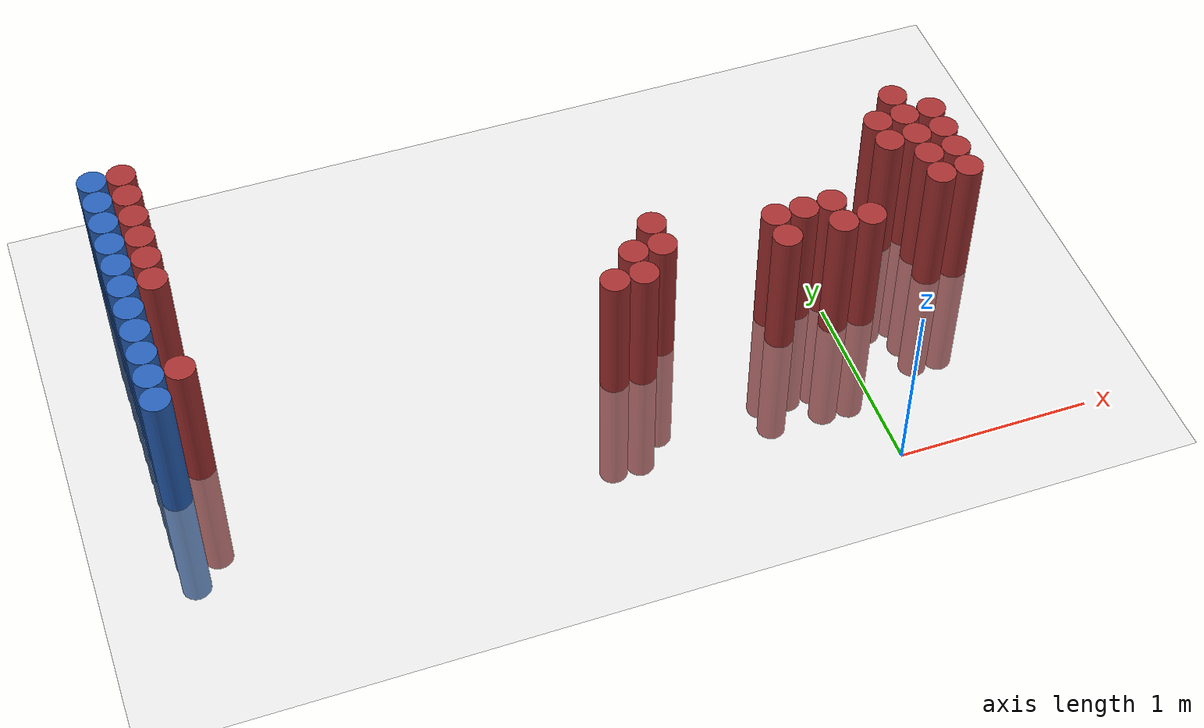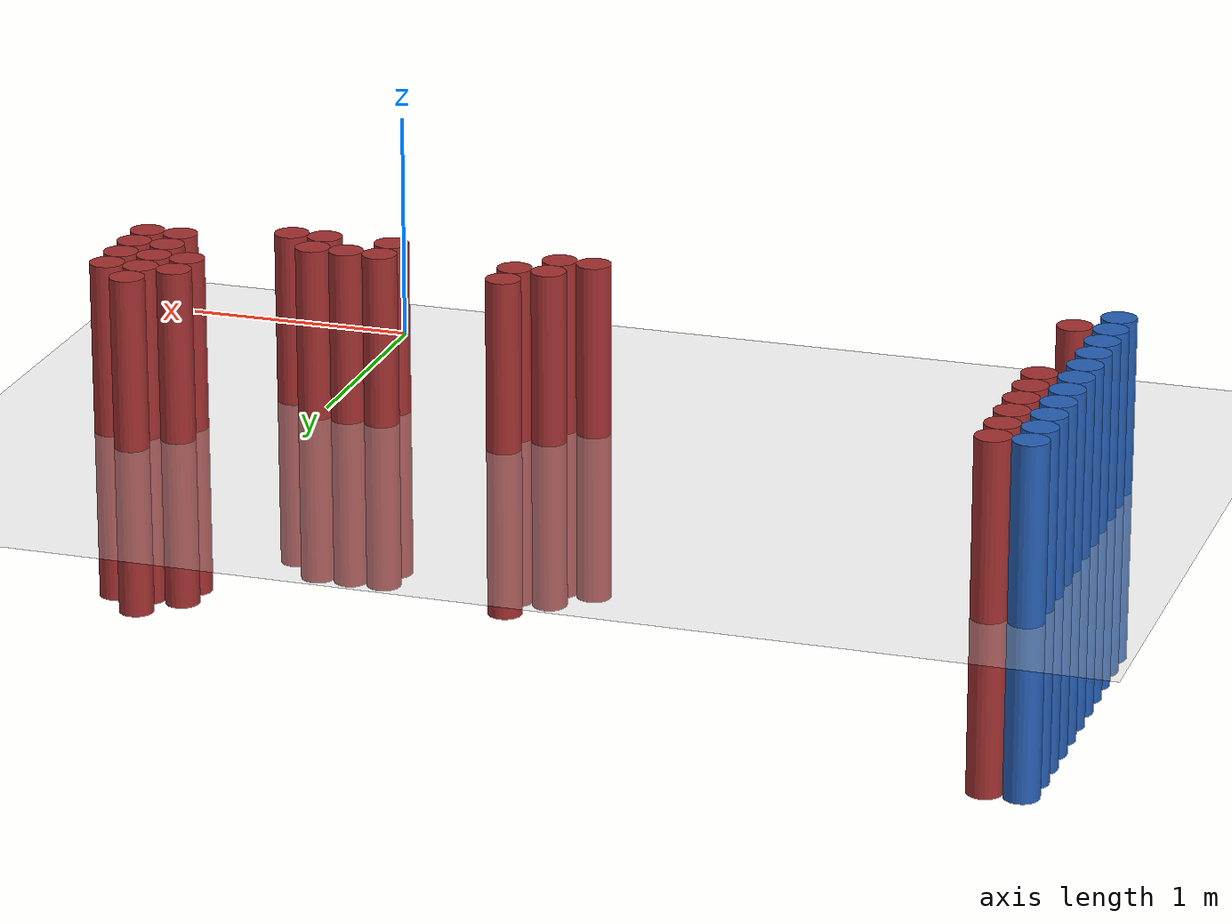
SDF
<sdf version="1.6">
 <world name="default">
  <model name="ground_plane">
   <static>1</static>
   <link name="link">
    <collision name="collision">
     <geometry><plane><normal>0 0 1</normal><size>100 100</size></plane></geometry>
     <surface><friction><ode><mu>100</mu><mu2>50</mu2></ode></friction></surface>
    </collision>
    <visual name="visual">
     <cast_shadows>0</cast_shadows>
     <geometry><plane><normal>0 0 1</normal><size>100 100</size></plane></geometry>
     <material>
      <script><uri>file://media/materials/scripts/gazebo.material</uri><name>Gazebo/Grey</name></script>
     </material>
    </visual>
   </link>
  </model>
  <model name="unit_cylinder_127">
   <static>1</static>
   <pose>-3.425000 0.925000 0.000000 0.000000 0.000000 0.000000</pose>
   <link name="link">
    <inertial>
     <mass>1</mass>
     <inertia><ixx>0.145833</ixx><ixy>0</ixy><ixz>0</ixz><iyy>0.145833</iyy><iyz>0</iyz><izz>0.125</izz></inertia>
    </inertial>
    <collision name="collision">
     <geometry><cylinder><radius>0.075000</radius><length>1.5</length></cylinder></geometry>
    </collision>
    <visual name="visual">
     <geometry><cylinder><radius>0.075000</radius><length>1.5</length></cylinder></geometry>
     <material>
      <ambient>0.152000 0.379000 0.720000 1</ambient>
      <diffuse>0.152000 0.379000 0.720000 1</diffuse>
     </material>
     <material>
      <script><name>Gazebo/Grey</name><uri>file://media/materials/scripts/gazebo.material</uri></script>
     </material>
    </visual>
   </link>
  </model>
  <model name="unit_cylinder_129">
   <static>1</static>
   <pose>-3.425000 1.075000 0.000000 0.000000 0.000000 0.000000</pose>
   <link name="link">
    <inertial>
     <mass>1</mass>
     <inertia><ixx>0.145833</ixx><ixy>0</ixy><ixz>0</ixz><iyy>0.145833</iyy><iyz>0</iyz><izz>0.125</izz></inertia>
    </inertial>
    <collision name="collision">
     <geometry><cylinder><radius>0.075000</radius><length>1.5</length></cylinder></geometry>
    </collision>
    <visual name="visual">
     <geometry><cylinder><radius>0.075000</radius><length>1.5</length></cylinder></geometry>
     <material>
      <ambient>0.152000 0.379000 0.720000 1</ambient>
      <diffuse>0.152000 0.379000 0.720000 1</diffuse>
     </material>
     <material>
      <script><name>Gazebo/Grey</name><uri>file://media/materials/scripts/gazebo.material</uri></script>
     </material>
    </visual>
   </link>
  </model>
  <model name="unit_cylinder_131">
   <static>1</static>
   <pose>-3.425000 1.225000 0.000000 0.000000 0.000000 0.000000</pose>
   <link name="link">
    <inertial>
     <mass>1</mass>
     <inertia><ixx>0.145833</ixx><ixy>0</ixy><ixz>0</ixz><iyy>0.145833</iyy><iyz>0</iyz><izz>0.125</izz></inertia>
    </inertial>
    <collision name="collision">
     <geometry><cylinder><radius>0.075000</radius><length>1.5</length></cylinder></geometry>
    </collision>
    <visual name="visual">
     <geometry><cylinder><radius>0.075000</radius><length>1.5</length></cylinder></geometry>
     <material>
      <ambient>0.152000 0.379000 0.720000 1</ambient>
      <diffuse>0.152000 0.379000 0.720000 1</diffuse>
     </material>
     <material>
      <script><name>Gazebo/Grey</name><uri>file://media/materials/scripts/gazebo.material</uri></script>
     </material>
    </visual>
   </link>
  </model>
  <model name="unit_cylinder_133">
   <static>1</static>
   <pose>-3.425000 1.375000 0.000000 0.000000 0.000000 0.000000</pose>
   <link name="link">
    <inertial>
     <mass>1</mass>
     <inertia><ixx>0.145833</ixx><ixy>0</ixy><ixz>0</ixz><iyy>0.145833</iyy><iyz>0</iyz><izz>0.125</izz></inertia>
    </inertial>
    <collision name="collision">
     <geometry><cylinder><radius>0.075000</radius><length>1.5</length></cylinder></geometry>
    </collision>
    <visual name="visual">
     <geometry><cylinder><radius>0.075000</radius><length>1.5</length></cylinder></geometry>
     <material>
      <ambient>0.152000 0.379000 0.720000 1</ambient>
      <diffuse>0.152000 0.379000 0.720000 1</diffuse>
     </material>
     <material>
      <script><name>Gazebo/Grey</name><uri>file://media/materials/scripts/gazebo.material</uri></script>
     </material>
    </visual>
   </link>
  </model>
  <model name="unit_cylinder_135">
   <static>1</static>
   <pose>-3.425000 1.525000 0.000000 0.000000 0.000000 0.000000</pose>
   <link name="link">
    <inertial>
     <mass>1</mass>
     <inertia><ixx>0.145833</ixx><ixy>0</ixy><ixz>0</ixz><iyy>0.145833</iyy><iyz>0</iyz><izz>0.125</izz></inertia>
    </inertial>
    <collision name="collision">
     <geometry><cylinder><radius>0.075000</radius><length>1.5</length></cylinder></geometry>
    </collision>
    <visual name="visual">
     <geometry><cylinder><radius>0.075000</radius><length>1.5</length></cylinder></geometry>
     <material>
      <ambient>0.152000 0.379000 0.720000 1</ambient>
      <diffuse>0.152000 0.379000 0.720000 1</diffuse>
     </material>
     <material>
      <script><name>Gazebo/Grey</name><uri>file://media/materials/scripts/gazebo.material</uri></script>
     </material>
    </visual>
   </link>
  </model>
  <model name="unit_cylinder_137">
   <static>1</static>
   <pose>-3.425000 1.675000 0.000000 0.000000 0.000000 0.000000</pose>
   <link name="link">
    <inertial>
     <mass>1</mass>
     <inertia><ixx>0.145833</ixx><ixy>0</ixy><ixz>0</ixz><iyy>0.145833</iyy><iyz>0</iyz><izz>0.125</izz></inertia>
    </inertial>
    <collision name="collision">
     <geometry><cylinder><radius>0.075000</radius><length>1.5</length></cylinder></geometry>
    </collision>
    <visual name="visual">
     <geometry><cylinder><radius>0.075000</radius><length>1.5</length></cylinder></geometry>
     <material>
      <ambient>0.152000 0.379000 0.720000 1</ambient>
      <diffuse>0.152000 0.379000 0.720000 1</diffuse>
     </material>
     <material>
      <script><name>Gazebo/Grey</name><uri>file://media/materials/scripts/gazebo.material</uri></script>
     </material>
    </visual>
   </link>
  </model>
  <model name="unit_cylinder_139">
   <static>1</static>
   <pose>-3.425000 1.825000 0.000000 0.000000 0.000000 0.000000</pose>
   <link name="link">
    <inertial>
     <mass>1</mass>
     <inertia><ixx>0.145833</ixx><ixy>0</ixy><ixz>0</ixz><iyy>0.145833</iyy><iyz>0</iyz><izz>0.125</izz></inertia>
    </inertial>
    <collision name="collision">
     <geometry><cylinder><radius>0.075000</radius><length>1.5</length></cylinder></geometry>
    </collision>
    <visual name="visual">
     <geometry><cylinder><radius>0.075000</radius><length>1.5</length></cylinder></geometry>
     <material>
      <ambient>0.152000 0.379000 0.720000 1</ambient>
      <diffuse>0.152000 0.379000 0.720000 1</diffuse>
     </material>
     <material>
      <script><name>Gazebo/Grey</name><uri>file://media/materials/scripts/gazebo.material</uri></script>
     </material>
    </visual>
   </link>
  </model>
  <model name="unit_cylinder_141">
   <static>1</static>
   <pose>-3.425000 1.975000 0.000000 0.000000 0.000000 0.000000</pose>
   <link name="link">
    <inertial>
     <mass>1</mass>
     <inertia><ixx>0.145833</ixx><ixy>0</ixy><ixz>0</ixz><iyy>0.145833</iyy><iyz>0</iyz><izz>0.125</izz></inertia>
    </inertial>
    <collision name="collision">
     <geometry><cylinder><radius>0.075000</radius><length>1.5</length></cylinder></geometry>
    </collision>
    <visual name="visual">
     <geometry><cylinder><radius>0.075000</radius><length>1.5</length></cylinder></geometry>
     <material>
      <ambient>0.152000 0.379000 0.720000 1</ambient>
      <diffuse>0.152000 0.379000 0.720000 1</diffuse>
     </material>
     <material>
      <script><name>Gazebo/Grey</name><uri>file://media/materials/scripts/gazebo.material</uri></script>
     </material>
    </visual>
   </link>
  </model>
  <model name="unit_cylinder_143">
   <static>1</static>
   <pose>-3.425000 2.125000 0.000000 0.000000 0.000000 0.000000</pose>
   <link name="link">
    <inertial>
     <mass>1</mass>
     <inertia><ixx>0.145833</ixx><ixy>0</ixy><ixz>0</ixz><iyy>0.145833</iyy><iyz>0</iyz><izz>0.125</izz></inertia>
    </inertial>
    <collision name="collision">
     <geometry><cylinder><radius>0.075000</radius><length>1.5</length></cylinder></geometry>
    </collision>
    <visual name="visual">
     <geometry><cylinder><radius>0.075000</radius><length>1.5</length></cylinder></geometry>
     <material>
      <ambient>0.152000 0.379000 0.720000 1</ambient>
      <diffuse>0.152000 0.379000 0.720000 1</diffuse>
     </material>
     <material>
      <script><name>Gazebo/Grey</name><uri>file://media/materials/scripts/gazebo.material</uri></script>
     </material>
    </visual>
   </link>
  </model>
  <model name="unit_cylinder_145">
   <static>1</static>
   <pose>-3.425000 2.275000 0.000000 0.000000 0.000000 0.000000</pose>
   <link name="link">
    <inertial>
     <mass>1</mass>
     <inertia><ixx>0.145833</ixx><ixy>0</ixy><ixz>0</ixz><iyy>0.145833</iyy><iyz>0</iyz><izz>0.125</izz></inertia>
    </inertial>
    <collision name="collision">
     <geometry><cylinder><radius>0.075000</radius><length>1.5</length></cylinder></geometry>
    </collision>
    <visual name="visual">
     <geometry><cylinder><radius>0.075000</radius><length>1.5</length></cylinder></geometry>
     <material>
      <ambient>0.152000 0.379000 0.720000 1</ambient>
      <diffuse>0.152000 0.379000 0.720000 1</diffuse>
     </material>
     <material>
      <script><name>Gazebo/Grey</name><uri>file://media/materials/scripts/gazebo.material</uri></script>
     </material>
    </visual>
   </link>
  </model>
  <model name="unit_cylinder_147">
   <static>1</static>
   <pose>-3.425000 2.425000 0.000000 0.000000 0.000000 0.000000</pose>
   <link name="link">
    <inertial>
     <mass>1</mass>
     <inertia><ixx>0.145833</ixx><ixy>0</ixy><ixz>0</ixz><iyy>0.145833</iyy><iyz>0</iyz><izz>0.125</izz></inertia>
    </inertial>
    <collision name="collision">
     <geometry><cylinder><radius>0.075000</radius><length>1.5</length></cylinder></geometry>
    </collision>
    <visual name="visual">
     <geometry><cylinder><radius>0.075000</radius><length>1.5</length></cylinder></geometry>
     <material>
      <ambient>0.152000 0.379000 0.720000 1</ambient>
      <diffuse>0.152000 0.379000 0.720000 1</diffuse>
     </material>
     <material>
      <script><name>Gazebo/Grey</name><uri>file://media/materials/scripts/gazebo.material</uri></script>
     </material>
    </visual>
   </link>
  </model>
  <model name="unit_cylinder_227">
   <static>1</static>
   <pose>-3.425000 0.925000 0.000000 0.000000 0.000000 0.000000</pose>
   <link name="link">
    <inertial>
     <mass>1</mass>
     <inertia><ixx>0.145833</ixx><ixy>0</ixy><ixz>0</ixz><iyy>0.145833</iyy><iyz>0</iyz><izz>0.125</izz></inertia>
    </inertial>
    <collision name="collision">
     <geometry><cylinder><radius>0.075000</radius><length>1.5</length></cylinder></geometry>
    </collision>
    <visual name="visual">
     <geometry><cylinder><radius>0.075000</radius><length>1.5</length></cylinder></geometry>
     <material>
      <ambient>0.152000 0.379000 0.720000 1</ambient>
      <diffuse>0.152000 0.379000 0.720000 1</diffuse>
     </material>
     <material>
      <script><name>Gazebo/Grey</name><uri>file://media/materials/scripts/gazebo.material</uri></script>
     </material>
    </visual>
   </link>
  </model>
  <model name="unit_cylinder_228">
   <static>1</static>
   <pose>-3.425000 1.075000 0.000000 0.000000 0.000000 0.000000</pose>
   <link name="link">
    <inertial>
     <mass>1</mass>
     <inertia><ixx>0.145833</ixx><ixy>0</ixy><ixz>0</ixz><iyy>0.145833</iyy><iyz>0</iyz><izz>0.125</izz></inertia>
    </inertial>
    <collision name="collision">
     <geometry><cylinder><radius>0.075000</radius><length>1.5</length></cylinder></geometry>
    </collision>
    <visual name="visual">
     <geometry><cylinder><radius>0.075000</radius><length>1.5</length></cylinder></geometry>
     <material>
      <ambient>0.152000 0.379000 0.720000 1</ambient>
      <diffuse>0.152000 0.379000 0.720000 1</diffuse>
     </material>
     <material>
      <script><name>Gazebo/Grey</name><uri>file://media/materials/scripts/gazebo.material</uri></script>
     </material>
    </visual>
   </link>
  </model>
  <model name="unit_cylinder_229">
   <static>1</static>
   <pose>-3.425000 1.225000 0.000000 0.000000 0.000000 0.000000</pose>
   <link name="link">
    <inertial>
     <mass>1</mass>
     <inertia><ixx>0.145833</ixx><ixy>0</ixy><ixz>0</ixz><iyy>0.145833</iyy><iyz>0</iyz><izz>0.125</izz></inertia>
    </inertial>
    <collision name="collision">
     <geometry><cylinder><radius>0.075000</radius><length>1.5</length></cylinder></geometry>
    </collision>
    <visual name="visual">
     <geometry><cylinder><radius>0.075000</radius><length>1.5</length></cylinder></geometry>
     <material>
      <ambient>0.152000 0.379000 0.720000 1</ambient>
      <diffuse>0.152000 0.379000 0.720000 1</diffuse>
     </material>
     <material>
      <script><name>Gazebo/Grey</name><uri>file://media/materials/scripts/gazebo.material</uri></script>
     </material>
    </visual>
   </link>
  </model>
  <model name="unit_cylinder_230">
   <static>1</static>
   <pose>-3.425000 1.375000 0.000000 0.000000 0.000000 0.000000</pose>
   <link name="link">
    <inertial>
     <mass>1</mass>
     <inertia><ixx>0.145833</ixx><ixy>0</ixy><ixz>0</ixz><iyy>0.145833</iyy><iyz>0</iyz><izz>0.125</izz></inertia>
    </inertial>
    <collision name="collision">
     <geometry><cylinder><radius>0.075000</radius><length>1.5</length></cylinder></geometry>
    </collision>
    <visual name="visual">
     <geometry><cylinder><radius>0.075000</radius><length>1.5</length></cylinder></geometry>
     <material>
      <ambient>0.152000 0.379000 0.720000 1</ambient>
      <diffuse>0.152000 0.379000 0.720000 1</diffuse>
     </material>
     <material>
      <script><name>Gazebo/Grey</name><uri>file://media/materials/scripts/gazebo.material</uri></script>
     </material>
    </visual>
   </link>
  </model>
  <model name="unit_cylinder_231">
   <static>1</static>
   <pose>-3.425000 1.525000 0.000000 0.000000 0.000000 0.000000</pose>
   <link name="link">
    <inertial>
     <mass>1</mass>
     <inertia><ixx>0.145833</ixx><ixy>0</ixy><ixz>0</ixz><iyy>0.145833</iyy><iyz>0</iyz><izz>0.125</izz></inertia>
    </inertial>
    <collision name="collision">
     <geometry><cylinder><radius>0.075000</radius><length>1.5</length></cylinder></geometry>
    </collision>
    <visual name="visual">
     <geometry><cylinder><radius>0.075000</radius><length>1.5</length></cylinder></geometry>
     <material>
      <ambient>0.152000 0.379000 0.720000 1</ambient>
      <diffuse>0.152000 0.379000 0.720000 1</diffuse>
     </material>
     <material>
      <script><name>Gazebo/Grey</name><uri>file://media/materials/scripts/gazebo.material</uri></script>
     </material>
    </visual>
   </link>
  </model>
  <model name="unit_cylinder_232">
   <static>1</static>
   <pose>-3.425000 1.675000 0.000000 0.000000 0.000000 0.000000</pose>
   <link name="link">
    <inertial>
     <mass>1</mass>
     <inertia><ixx>0.145833</ixx><ixy>0</ixy><ixz>0</ixz><iyy>0.145833</iyy><iyz>0</iyz><izz>0.125</izz></inertia>
    </inertial>
    <collision name="collision">
     <geometry><cylinder><radius>0.075000</radius><length>1.5</length></cylinder></geometry>
    </collision>
    <visual name="visual">
     <geometry><cylinder><radius>0.075000</radius><length>1.5</length></cylinder></geometry>
     <material>
      <ambient>0.152000 0.379000 0.720000 1</ambient>
      <diffuse>0.152000 0.379000 0.720000 1</diffuse>
     </material>
     <material>
      <script><name>Gazebo/Grey</name><uri>file://media/materials/scripts/gazebo.material</uri></script>
     </material>
    </visual>
   </link>
  </model>
  <model name="unit_cylinder_233">
   <static>1</static>
   <pose>-3.425000 1.825000 0.000000 0.000000 0.000000 0.000000</pose>
   <link name="link">
    <inertial>
     <mass>1</mass>
     <inertia><ixx>0.145833</ixx><ixy>0</ixy><ixz>0</ixz><iyy>0.145833</iyy><iyz>0</iyz><izz>0.125</izz></inertia>
    </inertial>
    <collision name="collision">
     <geometry><cylinder><radius>0.075000</radius><length>1.5</length></cylinder></geometry>
    </collision>
    <visual name="visual">
     <geometry><cylinder><radius>0.075000</radius><length>1.5</length></cylinder></geometry>
     <material>
      <ambient>0.152000 0.379000 0.720000 1</ambient>
      <diffuse>0.152000 0.379000 0.720000 1</diffuse>
     </material>
     <material>
      <script><name>Gazebo/Grey</name><uri>file://media/materials/scripts/gazebo.material</uri></script>
     </material>
    </visual>
   </link>
  </model>
  <model name="unit_cylinder_234">
   <static>1</static>
   <pose>-3.425000 1.975000 0.000000 0.000000 0.000000 0.000000</pose>
   <link name="link">
    <inertial>
     <mass>1</mass>
     <inertia><ixx>0.145833</ixx><ixy>0</ixy><ixz>0</ixz><iyy>0.145833</iyy><iyz>0</iyz><izz>0.125</izz></inertia>
    </inertial>
    <collision name="collision">
     <geometry><cylinder><radius>0.075000</radius><length>1.5</length></cylinder></geometry>
    </collision>
    <visual name="visual">
     <geometry><cylinder><radius>0.075000</radius><length>1.5</length></cylinder></geometry>
     <material>
      <ambient>0.152000 0.379000 0.720000 1</ambient>
      <diffuse>0.152000 0.379000 0.720000 1</diffuse>
     </material>
     <material>
      <script><name>Gazebo/Grey</name><uri>file://media/materials/scripts/gazebo.material</uri></script>
     </material>
    </visual>
   </link>
  </model>
  <model name="unit_cylinder_235">
   <static>1</static>
   <pose>-3.425000 2.125000 0.000000 0.000000 0.000000 0.000000</pose>
   <link name="link">
    <inertial>
     <mass>1</mass>
     <inertia><ixx>0.145833</ixx><ixy>0</ixy><ixz>0</ixz><iyy>0.145833</iyy><iyz>0</iyz><izz>0.125</izz></inertia>
    </inertial>
    <collision name="collision">
     <geometry><cylinder><radius>0.075000</radius><length>1.5</length></cylinder></geometry>
    </collision>
    <visual name="visual">
     <geometry><cylinder><radius>0.075000</radius><length>1.5</length></cylinder></geometry>
     <material>
      <ambient>0.152000 0.379000 0.720000 1</ambient>
      <diffuse>0.152000 0.379000 0.720000 1</diffuse>
     </material>
     <material>
      <script><name>Gazebo/Grey</name><uri>file://media/materials/scripts/gazebo.material</uri></script>
     </material>
    </visual>
   </link>
  </model>
  <model name="unit_cylinder_236">
   <static>1</static>
   <pose>-3.425000 2.275000 0.000000 0.000000 0.000000 0.000000</pose>
   <link name="link">
    <inertial>
     <mass>1</mass>
     <inertia><ixx>0.145833</ixx><ixy>0</ixy><ixz>0</ixz><iyy>0.145833</iyy><iyz>0</iyz><izz>0.125</izz></inertia>
    </inertial>
    <collision name="collision">
     <geometry><cylinder><radius>0.075000</radius><length>1.5</length></cylinder></geometry>
    </collision>
    <visual name="visual">
     <geometry><cylinder><radius>0.075000</radius><length>1.5</length></cylinder></geometry>
     <material>
      <ambient>0.152000 0.379000 0.720000 1</ambient>
      <diffuse>0.152000 0.379000 0.720000 1</diffuse>
     </material>
     <material>
      <script><name>Gazebo/Grey</name><uri>file://media/materials/scripts/gazebo.material</uri></script>
     </material>
    </visual>
   </link>
  </model>
  <model name="unit_cylinder_237">
   <static>1</static>
   <pose>-3.425000 2.425000 0.000000 0.000000 0.000000 0.000000</pose>
   <link name="link">
    <inertial>
     <mass>1</mass>
     <inertia><ixx>0.145833</ixx><ixy>0</ixy><ixz>0</ixz><iyy>0.145833</iyy><iyz>0</iyz><izz>0.125</izz></inertia>
    </inertial>
    <collision name="collision">
     <geometry><cylinder><radius>0.075000</radius><length>1.5</length></cylinder></geometry>
    </collision>
    <visual name="visual">
     <geometry><cylinder><radius>0.075000</radius><length>1.5</length></cylinder></geometry>
     <material>
      <ambient>0.152000 0.379000 0.720000 1</ambient>
      <diffuse>0.152000 0.379000 0.720000 1</diffuse>
     </material>
     <material>
      <script><name>Gazebo/Grey</name><uri>file://media/materials/scripts/gazebo.material</uri></script>
     </material>
    </visual>
   </link>
  </model>
  <model name="unit_cylinder_264">
   <static>1</static>
   <pose>-3.275000 1.075000 0.000000 0.000000 0.000000 0.000000</pose>
   <link name="link">
    <inertial>
     <mass>1</mass>
     <inertia><ixx>0.145833</ixx><ixy>0</ixy><ixz>0</ixz><iyy>0.145833</iyy><iyz>0</iyz><izz>0.125</izz></inertia>
    </inertial>
    <collision name="collision">
     <geometry><cylinder><radius>0.075000</radius><length>1.5</length></cylinder></geometry>
    </collision>
    <visual name="visual">
     <geometry><cylinder><radius>0.075000</radius><length>1.5</length></cylinder></geometry>
     <material>
      <ambient>0.648000 0.192000 0.192000 1</ambient>
      <diffuse>0.648000 0.192000 0.192000 1</diffuse>
     </material>
     <material>
      <script><name>Gazebo/Grey</name><uri>file://media/materials/scripts/gazebo.material</uri></script>
     </material>
    </visual>
   </link>
  </model>
  <model name="unit_cylinder_265">
   <static>1</static>
   <pose>-3.275000 1.675000 0.000000 0.000000 0.000000 0.000000</pose>
   <link name="link">
    <inertial>
     <mass>1</mass>
     <inertia><ixx>0.145833</ixx><ixy>0</ixy><ixz>0</ixz><iyy>0.145833</iyy><iyz>0</iyz><izz>0.125</izz></inertia>
    </inertial>
    <collision name="collision">
     <geometry><cylinder><radius>0.075000</radius><length>1.5</length></cylinder></geometry>
    </collision>
    <visual name="visual">
     <geometry><cylinder><radius>0.075000</radius><length>1.5</length></cylinder></geometry>
     <material>
      <ambient>0.648000 0.192000 0.192000 1</ambient>
      <diffuse>0.648000 0.192000 0.192000 1</diffuse>
     </material>
     <material>
      <script><name>Gazebo/Grey</name><uri>file://media/materials/scripts/gazebo.material</uri></script>
     </material>
    </visual>
   </link>
  </model>
  <model name="unit_cylinder_266">
   <static>1</static>
   <pose>-3.275000 1.825000 0.000000 0.000000 0.000000 0.000000</pose>
   <link name="link">
    <inertial>
     <mass>1</mass>
     <inertia><ixx>0.145833</ixx><ixy>0</ixy><ixz>0</ixz><iyy>0.145833</iyy><iyz>0</iyz><izz>0.125</izz></inertia>
    </inertial>
    <collision name="collision">
     <geometry><cylinder><radius>0.075000</radius><length>1.5</length></cylinder></geometry>
    </collision>
    <visual name="visual">
     <geometry><cylinder><radius>0.075000</radius><length>1.5</length></cylinder></geometry>
     <material>
      <ambient>0.648000 0.192000 0.192000 1</ambient>
      <diffuse>0.648000 0.192000 0.192000 1</diffuse>
     </material>
     <material>
      <script><name>Gazebo/Grey</name><uri>file://media/materials/scripts/gazebo.material</uri></script>
     </material>
    </visual>
   </link>
  </model>
  <model name="unit_cylinder_267">
   <static>1</static>
   <pose>-3.275000 1.975000 0.000000 0.000000 0.000000 0.000000</pose>
   <link name="link">
    <inertial>
     <mass>1</mass>
     <inertia><ixx>0.145833</ixx><ixy>0</ixy><ixz>0</ixz><iyy>0.145833</iyy><iyz>0</iyz><izz>0.125</izz></inertia>
    </inertial>
    <collision name="collision">
     <geometry><cylinder><radius>0.075000</radius><length>1.5</length></cylinder></geometry>
    </collision>
    <visual name="visual">
     <geometry><cylinder><radius>0.075000</radius><length>1.5</length></cylinder></geometry>
     <material>
      <ambient>0.648000 0.192000 0.192000 1</ambient>
      <diffuse>0.648000 0.192000 0.192000 1</diffuse>
     </material>
     <material>
      <script><name>Gazebo/Grey</name><uri>file://media/materials/scripts/gazebo.material</uri></script>
     </material>
    </visual>
   </link>
  </model>
  <model name="unit_cylinder_268">
   <static>1</static>
   <pose>-3.275000 2.125000 0.000000 0.000000 0.000000 0.000000</pose>
   <link name="link">
    <inertial>
     <mass>1</mass>
     <inertia><ixx>0.145833</ixx><ixy>0</ixy><ixz>0</ixz><iyy>0.145833</iyy><iyz>0</iyz><izz>0.125</izz></inertia>
    </inertial>
    <collision name="collision">
     <geometry><cylinder><radius>0.075000</radius><length>1.5</length></cylinder></geometry>
    </collision>
    <visual name="visual">
     <geometry><cylinder><radius>0.075000</radius><length>1.5</length></cylinder></geometry>
     <material>
      <ambient>0.648000 0.192000 0.192000 1</ambient>
      <diffuse>0.648000 0.192000 0.192000 1</diffuse>
     </material>
     <material>
      <script><name>Gazebo/Grey</name><uri>file://media/materials/scripts/gazebo.material</uri></script>
     </material>
    </visual>
   </link>
  </model>
  <model name="unit_cylinder_269">
   <static>1</static>
   <pose>-3.275000 2.275000 0.000000 0.000000 0.000000 0.000000</pose>
   <link name="link">
    <inertial>
     <mass>1</mass>
     <inertia><ixx>0.145833</ixx><ixy>0</ixy><ixz>0</ixz><iyy>0.145833</iyy><iyz>0</iyz><izz>0.125</izz></inertia>
    </inertial>
    <collision name="collision">
     <geometry><cylinder><radius>0.075000</radius><length>1.5</length></cylinder></geometry>
    </collision>
    <visual name="visual">
     <geometry><cylinder><radius>0.075000</radius><length>1.5</length></cylinder></geometry>
     <material>
      <ambient>0.648000 0.192000 0.192000 1</ambient>
      <diffuse>0.648000 0.192000 0.192000 1</diffuse>
     </material>
     <material>
      <script><name>Gazebo/Grey</name><uri>file://media/materials/scripts/gazebo.material</uri></script>
     </material>
    </visual>
   </link>
  </model>
  <model name="unit_cylinder_270">
   <static>1</static>
   <pose>-3.275000 2.425000 0.000000 0.000000 0.000000 0.000000</pose>
   <link name="link">
    <inertial>
     <mass>1</mass>
     <inertia><ixx>0.145833</ixx><ixy>0</ixy><ixz>0</ixz><iyy>0.145833</iyy><iyz>0</iyz><izz>0.125</izz></inertia>
    </inertial>
    <collision name="collision">
     <geometry><cylinder><radius>0.075000</radius><length>1.5</length></cylinder></geometry>
    </collision>
    <visual name="visual">
     <geometry><cylinder><radius>0.075000</radius><length>1.5</length></cylinder></geometry>
     <material>
      <ambient>0.648000 0.192000 0.192000 1</ambient>
      <diffuse>0.648000 0.192000 0.192000 1</diffuse>
     </material>
     <material>
      <script><name>Gazebo/Grey</name><uri>file://media/materials/scripts/gazebo.material</uri></script>
     </material>
    </visual>
   </link>
  </model>
  <model name="unit_cylinder_312">
   <static>1</static>
   <pose>-1.175000 0.925000 0.000000 0.000000 0.000000 0.000000</pose>
   <link name="link">
    <inertial>
     <mass>1</mass>
     <inertia><ixx>0.145833</ixx><ixy>0</ixy><ixz>0</ixz><iyy>0.145833</iyy><iyz>0</iyz><izz>0.125</izz></inertia>
    </inertial>
    <collision name="collision">
     <geometry><cylinder><radius>0.075000</radius><length>1.5</length></cylinder></geometry>
    </collision>
    <visual name="visual">
     <geometry><cylinder><radius>0.075000</radius><length>1.5</length></cylinder></geometry>
     <material>
      <ambient>0.648000 0.192000 0.192000 1</ambient>
      <diffuse>0.648000 0.192000 0.192000 1</diffuse>
     </material>
     <material>
      <script><name>Gazebo/Grey</name><uri>file://media/materials/scripts/gazebo.material</uri></script>
     </material>
    </visual>
   </link>
  </model>
  <model name="unit_cylinder_314">
   <static>1</static>
   <pose>-1.025000 0.925000 0.000000 0.000000 0.000000 0.000000</pose>
   <link name="link">
    <inertial>
     <mass>1</mass>
     <inertia><ixx>0.145833</ixx><ixy>0</ixy><ixz>0</ixz><iyy>0.145833</iyy><iyz>0</iyz><izz>0.125</izz></inertia>
    </inertial>
    <collision name="collision">
     <geometry><cylinder><radius>0.075000</radius><length>1.5</length></cylinder></geometry>
    </collision>
    <visual name="visual">
     <geometry><cylinder><radius>0.075000</radius><length>1.5</length></cylinder></geometry>
     <material>
      <ambient>0.648000 0.192000 0.192000 1</ambient>
      <diffuse>0.648000 0.192000 0.192000 1</diffuse>
     </material>
     <material>
      <script><name>Gazebo/Grey</name><uri>file://media/materials/scripts/gazebo.material</uri></script>
     </material>
    </visual>
   </link>
  </model>
  <model name="unit_cylinder_315">
   <static>1</static>
   <pose>-1.025000 1.075000 0.000000 0.000000 0.000000 0.000000</pose>
   <link name="link">
    <inertial>
     <mass>1</mass>
     <inertia><ixx>0.145833</ixx><ixy>0</ixy><ixz>0</ixz><iyy>0.145833</iyy><iyz>0</iyz><izz>0.125</izz></inertia>
    </inertial>
    <collision name="collision">
     <geometry><cylinder><radius>0.075000</radius><length>1.5</length></cylinder></geometry>
    </collision>
    <visual name="visual">
     <geometry><cylinder><radius>0.075000</radius><length>1.5</length></cylinder></geometry>
     <material>
      <ambient>0.648000 0.192000 0.192000 1</ambient>
      <diffuse>0.648000 0.192000 0.192000 1</diffuse>
     </material>
     <material>
      <script><name>Gazebo/Grey</name><uri>file://media/materials/scripts/gazebo.material</uri></script>
     </material>
    </visual>
   </link>
  </model>
  <model name="unit_cylinder_320">
   <static>1</static>
   <pose>-0.875000 1.075000 0.000000 0.000000 0.000000 0.000000</pose>
   <link name="link">
    <inertial>
     <mass>1</mass>
     <inertia><ixx>0.145833</ixx><ixy>0</ixy><ixz>0</ixz><iyy>0.145833</iyy><iyz>0</iyz><izz>0.125</izz></inertia>
    </inertial>
    <collision name="collision">
     <geometry><cylinder><radius>0.075000</radius><length>1.5</length></cylinder></geometry>
    </collision>
    <visual name="visual">
     <geometry><cylinder><radius>0.075000</radius><length>1.5</length></cylinder></geometry>
     <material>
      <ambient>0.648000 0.192000 0.192000 1</ambient>
      <diffuse>0.648000 0.192000 0.192000 1</diffuse>
     </material>
     <material>
      <script><name>Gazebo/Grey</name><uri>file://media/materials/scripts/gazebo.material</uri></script>
     </material>
    </visual>
   </link>
  </model>
  <model name="unit_cylinder_321">
   <static>1</static>
   <pose>-0.875000 1.225000 0.000000 0.000000 0.000000 0.000000</pose>
   <link name="link">
    <inertial>
     <mass>1</mass>
     <inertia><ixx>0.145833</ixx><ixy>0</ixy><ixz>0</ixz><iyy>0.145833</iyy><iyz>0</iyz><izz>0.125</izz></inertia>
    </inertial>
    <collision name="collision">
     <geometry><cylinder><radius>0.075000</radius><length>1.5</length></cylinder></geometry>
    </collision>
    <visual name="visual">
     <geometry><cylinder><radius>0.075000</radius><length>1.5</length></cylinder></geometry>
     <material>
      <ambient>0.648000 0.192000 0.192000 1</ambient>
      <diffuse>0.648000 0.192000 0.192000 1</diffuse>
     </material>
     <material>
      <script><name>Gazebo/Grey</name><uri>file://media/materials/scripts/gazebo.material</uri></script>
     </material>
    </visual>
   </link>
  </model>
  <model name="unit_cylinder_330">
   <static>1</static>
   <pose>-0.275000 0.925000 0.000000 0.000000 0.000000 0.000000</pose>
   <link name="link">
    <inertial>
     <mass>1</mass>
     <inertia><ixx>0.145833</ixx><ixy>0</ixy><ixz>0</ixz><iyy>0.145833</iyy><iyz>0</iyz><izz>0.125</izz></inertia>
    </inertial>
    <collision name="collision">
     <geometry><cylinder><radius>0.075000</radius><length>1.5</length></cylinder></geometry>
    </collision>
    <visual name="visual">
     <geometry><cylinder><radius>0.075000</radius><length>1.5</length></cylinder></geometry>
     <material>
      <ambient>0.648000 0.192000 0.192000 1</ambient>
      <diffuse>0.648000 0.192000 0.192000 1</diffuse>
     </material>
     <material>
      <script><name>Gazebo/Grey</name><uri>file://media/materials/scripts/gazebo.material</uri></script>
     </material>
    </visual>
   </link>
  </model>
  <model name="unit_cylinder_331">
   <static>1</static>
   <pose>-0.275000 1.075000 0.000000 0.000000 0.000000 0.000000</pose>
   <link name="link">
    <inertial>
     <mass>1</mass>
     <inertia><ixx>0.145833</ixx><ixy>0</ixy><ixz>0</ixz><iyy>0.145833</iyy><iyz>0</iyz><izz>0.125</izz></inertia>
    </inertial>
    <collision name="collision">
     <geometry><cylinder><radius>0.075000</radius><length>1.5</length></cylinder></geometry>
    </collision>
    <visual name="visual">
     <geometry><cylinder><radius>0.075000</radius><length>1.5</length></cylinder></geometry>
     <material>
      <ambient>0.648000 0.192000 0.192000 1</ambient>
      <diffuse>0.648000 0.192000 0.192000 1</diffuse>
     </material>
     <material>
      <script><name>Gazebo/Grey</name><uri>file://media/materials/scripts/gazebo.material</uri></script>
     </material>
    </visual>
   </link>
  </model>
  <model name="unit_cylinder_339">
   <static>1</static>
   <pose>-0.125000 1.075000 0.000000 0.000000 0.000000 0.000000</pose>
   <link name="link">
    <inertial>
     <mass>1</mass>
     <inertia><ixx>0.145833</ixx><ixy>0</ixy><ixz>0</ixz><iyy>0.145833</iyy><iyz>0</iyz><izz>0.125</izz></inertia>
    </inertial>
    <collision name="collision">
     <geometry><cylinder><radius>0.075000</radius><length>1.5</length></cylinder></geometry>
    </collision>
    <visual name="visual">
     <geometry><cylinder><radius>0.075000</radius><length>1.5</length></cylinder></geometry>
     <material>
      <ambient>0.648000 0.192000 0.192000 1</ambient>
      <diffuse>0.648000 0.192000 0.192000 1</diffuse>
     </material>
     <material>
      <script><name>Gazebo/Grey</name><uri>file://media/materials/scripts/gazebo.material</uri></script>
     </material>
    </visual>
   </link>
  </model>
  <model name="unit_cylinder_345">
   <static>1</static>
   <pose>0.025000 0.925000 0.000000 0.000000 0.000000 0.000000</pose>
   <link name="link">
    <inertial>
     <mass>1</mass>
     <inertia><ixx>0.145833</ixx><ixy>0</ixy><ixz>0</ixz><iyy>0.145833</iyy><iyz>0</iyz><izz>0.125</izz></inertia>
    </inertial>
    <collision name="collision">
     <geometry><cylinder><radius>0.075000</radius><length>1.5</length></cylinder></geometry>
    </collision>
    <visual name="visual">
     <geometry><cylinder><radius>0.075000</radius><length>1.5</length></cylinder></geometry>
     <material>
      <ambient>0.648000 0.192000 0.192000 1</ambient>
      <diffuse>0.648000 0.192000 0.192000 1</diffuse>
     </material>
     <material>
      <script><name>Gazebo/Grey</name><uri>file://media/materials/scripts/gazebo.material</uri></script>
     </material>
    </visual>
   </link>
  </model>
  <model name="unit_cylinder_346">
   <static>1</static>
   <pose>0.025000 1.075000 0.000000 0.000000 0.000000 0.000000</pose>
   <link name="link">
    <inertial>
     <mass>1</mass>
     <inertia><ixx>0.145833</ixx><ixy>0</ixy><ixz>0</ixz><iyy>0.145833</iyy><iyz>0</iyz><izz>0.125</izz></inertia>
    </inertial>
    <collision name="collision">
     <geometry><cylinder><radius>0.075000</radius><length>1.5</length></cylinder></geometry>
    </collision>
    <visual name="visual">
     <geometry><cylinder><radius>0.075000</radius><length>1.5</length></cylinder></geometry>
     <material>
      <ambient>0.648000 0.192000 0.192000 1</ambient>
      <diffuse>0.648000 0.192000 0.192000 1</diffuse>
     </material>
     <material>
      <script><name>Gazebo/Grey</name><uri>file://media/materials/scripts/gazebo.material</uri></script>
     </material>
    </visual>
   </link>
  </model>
  <model name="unit_cylinder_353">
   <static>1</static>
   <pose>0.175000 0.925000 0.000000 0.000000 0.000000 0.000000</pose>
   <link name="link">
    <inertial>
     <mass>1</mass>
     <inertia><ixx>0.145833</ixx><ixy>0</ixy><ixz>0</ixz><iyy>0.145833</iyy><iyz>0</iyz><izz>0.125</izz></inertia>
    </inertial>
    <collision name="collision">
     <geometry><cylinder><radius>0.075000</radius><length>1.5</length></cylinder></geometry>
    </collision>
    <visual name="visual">
     <geometry><cylinder><radius>0.075000</radius><length>1.5</length></cylinder></geometry>
     <material>
      <ambient>0.648000 0.192000 0.192000 1</ambient>
      <diffuse>0.648000 0.192000 0.192000 1</diffuse>
     </material>
     <material>
      <script><name>Gazebo/Grey</name><uri>file://media/materials/scripts/gazebo.material</uri></script>
     </material>
    </visual>
   </link>
  </model>
  <model name="unit_cylinder_367">
   <static>1</static>
   <pose>0.475000 1.375000 0.000000 0.000000 0.000000 0.000000</pose>
   <link name="link">
    <inertial>
     <mass>1</mass>
     <inertia><ixx>0.145833</ixx><ixy>0</ixy><ixz>0</ixz><iyy>0.145833</iyy><iyz>0</iyz><izz>0.125</izz></inertia>
    </inertial>
    <collision name="collision">
     <geometry><cylinder><radius>0.075000</radius><length>1.5</length></cylinder></geometry>
    </collision>
    <visual name="visual">
     <geometry><cylinder><radius>0.075000</radius><length>1.5</length></cylinder></geometry>
     <material>
      <ambient>0.648000 0.192000 0.192000 1</ambient>
      <diffuse>0.648000 0.192000 0.192000 1</diffuse>
     </material>
     <material>
      <script><name>Gazebo/Grey</name><uri>file://media/materials/scripts/gazebo.material</uri></script>
     </material>
    </visual>
   </link>
  </model>
  <model name="unit_cylinder_368">
   <static>1</static>
   <pose>0.475000 1.525000 0.000000 0.000000 0.000000 0.000000</pose>
   <link name="link">
    <inertial>
     <mass>1</mass>
     <inertia><ixx>0.145833</ixx><ixy>0</ixy><ixz>0</ixz><iyy>0.145833</iyy><iyz>0</iyz><izz>0.125</izz></inertia>
    </inertial>
    <collision name="collision">
     <geometry><cylinder><radius>0.075000</radius><length>1.5</length></cylinder></geometry>
    </collision>
    <visual name="visual">
     <geometry><cylinder><radius>0.075000</radius><length>1.5</length></cylinder></geometry>
     <material>
      <ambient>0.648000 0.192000 0.192000 1</ambient>
      <diffuse>0.648000 0.192000 0.192000 1</diffuse>
     </material>
     <material>
      <script><name>Gazebo/Grey</name><uri>file://media/materials/scripts/gazebo.material</uri></script>
     </material>
    </visual>
   </link>
  </model>
  <model name="unit_cylinder_374">
   <static>1</static>
   <pose>0.625000 1.075000 0.000000 0.000000 0.000000 0.000000</pose>
   <link name="link">
    <inertial>
     <mass>1</mass>
     <inertia><ixx>0.145833</ixx><ixy>0</ixy><ixz>0</ixz><iyy>0.145833</iyy><iyz>0</iyz><izz>0.125</izz></inertia>
    </inertial>
    <collision name="collision">
     <geometry><cylinder><radius>0.075000</radius><length>1.5</length></cylinder></geometry>
    </collision>
    <visual name="visual">
     <geometry><cylinder><radius>0.075000</radius><length>1.5</length></cylinder></geometry>
     <material>
      <ambient>0.648000 0.192000 0.192000 1</ambient>
      <diffuse>0.648000 0.192000 0.192000 1</diffuse>
     </material>
     <material>
      <script><name>Gazebo/Grey</name><uri>file://media/materials/scripts/gazebo.material</uri></script>
     </material>
    </visual>
   </link>
  </model>
  <model name="unit_cylinder_375">
   <static>1</static>
   <pose>0.625000 1.225000 0.000000 0.000000 0.000000 0.000000</pose>
   <link name="link">
    <inertial>
     <mass>1</mass>
     <inertia><ixx>0.145833</ixx><ixy>0</ixy><ixz>0</ixz><iyy>0.145833</iyy><iyz>0</iyz><izz>0.125</izz></inertia>
    </inertial>
    <collision name="collision">
     <geometry><cylinder><radius>0.075000</radius><length>1.5</length></cylinder></geometry>
    </collision>
    <visual name="visual">
     <geometry><cylinder><radius>0.075000</radius><length>1.5</length></cylinder></geometry>
     <material>
      <ambient>0.648000 0.192000 0.192000 1</ambient>
      <diffuse>0.648000 0.192000 0.192000 1</diffuse>
     </material>
     <material>
      <script><name>Gazebo/Grey</name><uri>file://media/materials/scripts/gazebo.material</uri></script>
     </material>
    </visual>
   </link>
  </model>
  <model name="unit_cylinder_376">
   <static>1</static>
   <pose>0.625000 1.375000 0.000000 0.000000 0.000000 0.000000</pose>
   <link name="link">
    <inertial>
     <mass>1</mass>
     <inertia><ixx>0.145833</ixx><ixy>0</ixy><ixz>0</ixz><iyy>0.145833</iyy><iyz>0</iyz><izz>0.125</izz></inertia>
    </inertial>
    <collision name="collision">
     <geometry><cylinder><radius>0.075000</radius><length>1.5</length></cylinder></geometry>
    </collision>
    <visual name="visual">
     <geometry><cylinder><radius>0.075000</radius><length>1.5</length></cylinder></geometry>
     <material>
      <ambient>0.648000 0.192000 0.192000 1</ambient>
      <diffuse>0.648000 0.192000 0.192000 1</diffuse>
     </material>
     <material>
      <script><name>Gazebo/Grey</name><uri>file://media/materials/scripts/gazebo.material</uri></script>
     </material>
    </visual>
   </link>
  </model>
  <model name="unit_cylinder_377">
   <static>1</static>
   <pose>0.625000 1.525000 0.000000 0.000000 0.000000 0.000000</pose>
   <link name="link">
    <inertial>
     <mass>1</mass>
     <inertia><ixx>0.145833</ixx><ixy>0</ixy><ixz>0</ixz><iyy>0.145833</iyy><iyz>0</iyz><izz>0.125</izz></inertia>
    </inertial>
    <collision name="collision">
     <geometry><cylinder><radius>0.075000</radius><length>1.5</length></cylinder></geometry>
    </collision>
    <visual name="visual">
     <geometry><cylinder><radius>0.075000</radius><length>1.5</length></cylinder></geometry>
     <material>
      <ambient>0.648000 0.192000 0.192000 1</ambient>
      <diffuse>0.648000 0.192000 0.192000 1</diffuse>
     </material>
     <material>
      <script><name>Gazebo/Grey</name><uri>file://media/materials/scripts/gazebo.material</uri></script>
     </material>
    </visual>
   </link>
  </model>
  <model name="unit_cylinder_378">
   <static>1</static>
   <pose>0.625000 1.675000 0.000000 0.000000 0.000000 0.000000</pose>
   <link name="link">
    <inertial>
     <mass>1</mass>
     <inertia><ixx>0.145833</ixx><ixy>0</ixy><ixz>0</ixz><iyy>0.145833</iyy><iyz>0</iyz><izz>0.125</izz></inertia>
    </inertial>
    <collision name="collision">
     <geometry><cylinder><radius>0.075000</radius><length>1.5</length></cylinder></geometry>
    </collision>
    <visual name="visual">
     <geometry><cylinder><radius>0.075000</radius><length>1.5</length></cylinder></geometry>
     <material>
      <ambient>0.648000 0.192000 0.192000 1</ambient>
      <diffuse>0.648000 0.192000 0.192000 1</diffuse>
     </material>
     <material>
      <script><name>Gazebo/Grey</name><uri>file://media/materials/scripts/gazebo.material</uri></script>
     </material>
    </visual>
   </link>
  </model>
  <model name="unit_cylinder_381">
   <static>1</static>
   <pose>0.775000 1.075000 0.000000 0.000000 0.000000 0.000000</pose>
   <link name="link">
    <inertial>
     <mass>1</mass>
     <inertia><ixx>0.145833</ixx><ixy>0</ixy><ixz>0</ixz><iyy>0.145833</iyy><iyz>0</iyz><izz>0.125</izz></inertia>
    </inertial>
    <collision name="collision">
     <geometry><cylinder><radius>0.075000</radius><length>1.5</length></cylinder></geometry>
    </collision>
    <visual name="visual">
     <geometry><cylinder><radius>0.075000</radius><length>1.5</length></cylinder></geometry>
     <material>
      <ambient>0.648000 0.192000 0.192000 1</ambient>
      <diffuse>0.648000 0.192000 0.192000 1</diffuse>
     </material>
     <material>
      <script><name>Gazebo/Grey</name><uri>file://media/materials/scripts/gazebo.material</uri></script>
     </material>
    </visual>
   </link>
  </model>
  <model name="unit_cylinder_382">
   <static>1</static>
   <pose>0.775000 1.225000 0.000000 0.000000 0.000000 0.000000</pose>
   <link name="link">
    <inertial>
     <mass>1</mass>
     <inertia><ixx>0.145833</ixx><ixy>0</ixy><ixz>0</ixz><iyy>0.145833</iyy><iyz>0</iyz><izz>0.125</izz></inertia>
    </inertial>
    <collision name="collision">
     <geometry><cylinder><radius>0.075000</radius><length>1.5</length></cylinder></geometry>
    </collision>
    <visual name="visual">
     <geometry><cylinder><radius>0.075000</radius><length>1.5</length></cylinder></geometry>
     <material>
      <ambient>0.648000 0.192000 0.192000 1</ambient>
      <diffuse>0.648000 0.192000 0.192000 1</diffuse>
     </material>
     <material>
      <script><name>Gazebo/Grey</name><uri>file://media/materials/scripts/gazebo.material</uri></script>
     </material>
    </visual>
   </link>
  </model>
  <model name="unit_cylinder_383">
   <static>1</static>
   <pose>0.775000 1.375000 0.000000 0.000000 0.000000 0.000000</pose>
   <link name="link">
    <inertial>
     <mass>1</mass>
     <inertia><ixx>0.145833</ixx><ixy>0</ixy><ixz>0</ixz><iyy>0.145833</iyy><iyz>0</iyz><izz>0.125</izz></inertia>
    </inertial>
    <collision name="collision">
     <geometry><cylinder><radius>0.075000</radius><length>1.5</length></cylinder></geometry>
    </collision>
    <visual name="visual">
     <geometry><cylinder><radius>0.075000</radius><length>1.5</length></cylinder></geometry>
     <material>
      <ambient>0.648000 0.192000 0.192000 1</ambient>
      <diffuse>0.648000 0.192000 0.192000 1</diffuse>
     </material>
     <material>
      <script><name>Gazebo/Grey</name><uri>file://media/materials/scripts/gazebo.material</uri></script>
     </material>
    </visual>
   </link>
  </model>
  <model name="unit_cylinder_384">
   <static>1</static>
   <pose>0.775000 1.525000 0.000000 0.000000 0.000000 0.000000</pose>
   <link name="link">
    <inertial>
     <mass>1</mass>
     <inertia><ixx>0.145833</ixx><ixy>0</ixy><ixz>0</ixz><iyy>0.145833</iyy><iyz>0</iyz><izz>0.125</izz></inertia>
    </inertial>
    <collision name="collision">
     <geometry><cylinder><radius>0.075000</radius><length>1.5</length></cylinder></geometry>
    </collision>
    <visual name="visual">
     <geometry><cylinder><radius>0.075000</radius><length>1.5</length></cylinder></geometry>
     <material>
      <ambient>0.648000 0.192000 0.192000 1</ambient>
      <diffuse>0.648000 0.192000 0.192000 1</diffuse>
     </material>
     <material>
      <script><name>Gazebo/Grey</name><uri>file://media/materials/scripts/gazebo.material</uri></script>
     </material>
    </visual>
   </link>
  </model>
 </world>
</sdf>
